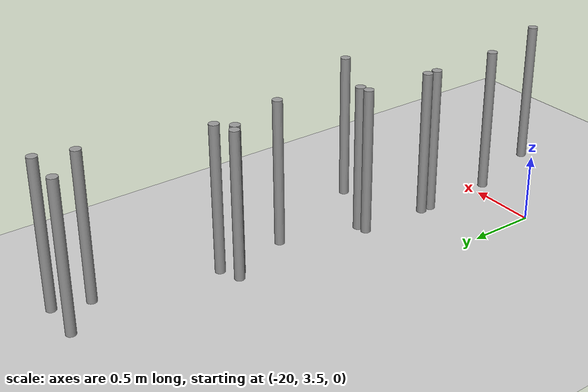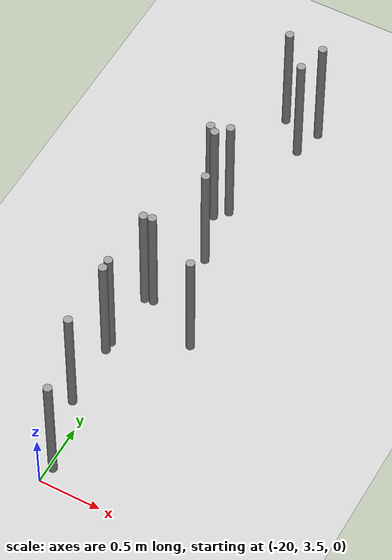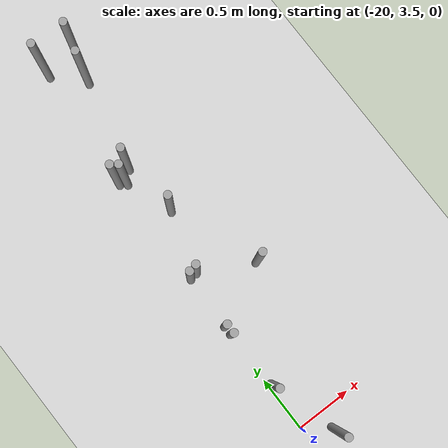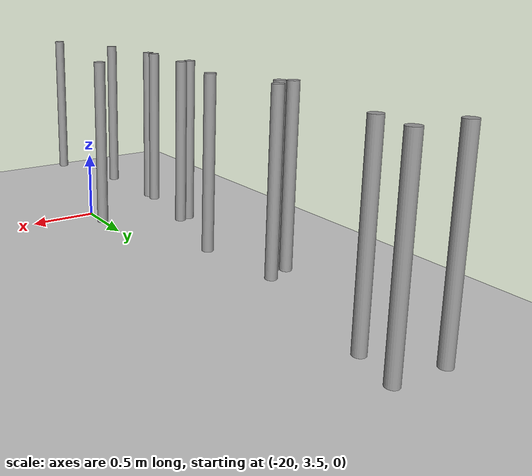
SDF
<sdf version="1.6">
 <world name="default">
  <model name="ground_plane">
   <static>1</static>
   <link name="link">
    <collision name="collision">
     <geometry><plane><normal>0 0 1</normal><size>100 100</size></plane></geometry>
     <surface><friction><ode><mu>100</mu><mu2>50</mu2></ode></friction></surface>
    </collision>
    <visual name="visual">
     <cast_shadows>0</cast_shadows>
     <geometry><plane><normal>0 0 1</normal><size>100 100</size></plane></geometry>
     <material>
      <script><uri>file://media/materials/scripts/gazebo.material</uri><name>Gazebo/Grey</name></script>
     </material>
    </visual>
   </link>
  </model>
  <model name="unit_cylinder_clone">
   <pose>-19.5882 7.05424 0.923526 5e-06 2.9e-05 -0.012918</pose>
   <link name="link">
    <inertial>
     <mass>1</mass>
     <inertia><ixx>0.145833</ixx><ixy>0</ixy><ixz>0</ixz><iyy>0.145833</iyy><iyz>0</iyz><izz>0.125</izz></inertia>
    </inertial>
    <collision name="collision">
     <geometry><cylinder><radius>0.0331322</radius><length>1</length></cylinder></geometry>
    </collision>
    <visual name="visual">
     <geometry><cylinder><radius>0.0331322</radius><length>1</length></cylinder></geometry>
     <material>
      <script><name>Gazebo/Grey</name><uri>file://media/materials/scripts/gazebo.material</uri></script>
     </material>
    </visual>
   </link>
  </model>
  <model name="unit_cylinder_clone_0">
   <pose>-19.6501 6.8248 0.923528 1e-06 -1e-06 0.021911</pose>
   <link name="link">
    <inertial>
     <mass>1</mass>
     <inertia><ixx>0.145833</ixx><ixy>0</ixy><ixz>0</ixz><iyy>0.145833</iyy><iyz>0</iyz><izz>0.125</izz></inertia>
    </inertial>
    <collision name="collision">
     <geometry><cylinder><radius>0.0331322</radius><length>1</length></cylinder></geometry>
    </collision>
    <visual name="visual">
     <geometry><cylinder><radius>0.0331322</radius><length>1</length></cylinder></geometry>
     <material>
      <script><name>Gazebo/Grey</name><uri>file://media/materials/scripts/gazebo.material</uri></script>
     </material>
    </visual>
   </link>
  </model>
  <model name="unit_cylinder_clone_2">
   <pose>-19.8744 7.0672 0.923528 -1e-06 3e-06 0.003301</pose>
   <link name="link">
    <inertial>
     <mass>1</mass>
     <inertia><ixx>0.145833</ixx><ixy>0</ixy><ixz>0</ixz><iyy>0.145833</iyy><iyz>0</iyz><izz>0.125</izz></inertia>
    </inertial>
    <collision name="collision">
     <geometry><cylinder><radius>0.0331322</radius><length>1</length></cylinder></geometry>
    </collision>
    <visual name="visual">
     <geometry><cylinder><radius>0.0331322</radius><length>1</length></cylinder></geometry>
     <material>
      <script><name>Gazebo/Grey</name><uri>file://media/materials/scripts/gazebo.material</uri></script>
     </material>
    </visual>
   </link>
  </model>
  <model name="unit_cylinder_clone_6">
   <pose>-19.8257 6.04554 0.923528 1e-06 2e-06 0.012434</pose>
   <link name="link">
    <inertial>
     <mass>1</mass>
     <inertia><ixx>0.145833</ixx><ixy>0</ixy><ixz>0</ixz><iyy>0.145833</iyy><iyz>0</iyz><izz>0.125</izz></inertia>
    </inertial>
    <collision name="collision">
     <geometry><cylinder><radius>0.0331322</radius><length>1</length></cylinder></geometry>
    </collision>
    <visual name="visual">
     <geometry><cylinder><radius>0.0331322</radius><length>1</length></cylinder></geometry>
     <material>
      <script><name>Gazebo/Grey</name><uri>file://media/materials/scripts/gazebo.material</uri></script>
     </material>
    </visual>
   </link>
  </model>
  <model name="unit_cylinder_clone_8">
   <pose>-19.9107 5.95607 0.92352 0 1e-06 0.00472</pose>
   <link name="link">
    <inertial>
     <mass>1</mass>
     <inertia><ixx>0.145833</ixx><ixy>0</ixy><ixz>0</ixz><iyy>0.145833</iyy><iyz>0</iyz><izz>0.125</izz></inertia>
    </inertial>
    <collision name="collision">
     <geometry><cylinder><radius>0.0331322</radius><length>1</length></cylinder></geometry>
    </collision>
    <visual name="visual">
     <geometry><cylinder><radius>0.0331322</radius><length>1</length></cylinder></geometry>
     <material>
      <script><name>Gazebo/Grey</name><uri>file://media/materials/scripts/gazebo.material</uri></script>
     </material>
    </visual>
   </link>
  </model>
  <model name="unit_cylinder_clone_11">
   <pose>-19.7666 5.55858 0.923525 2.3e-05 -1e-06 -0.004253</pose>
   <link name="link">
    <inertial>
     <mass>1</mass>
     <inertia><ixx>0.145833</ixx><ixy>0</ixy><ixz>0</ixz><iyy>0.145833</iyy><iyz>0</iyz><izz>0.125</izz></inertia>
    </inertial>
    <collision name="collision">
     <geometry><cylinder><radius>0.0331322</radius><length>1</length></cylinder></geometry>
    </collision>
    <visual name="visual">
     <geometry><cylinder><radius>0.0331322</radius><length>1</length></cylinder></geometry>
     <material>
      <script><name>Gazebo/Grey</name><uri>file://media/materials/scripts/gazebo.material</uri></script>
     </material>
    </visual>
   </link>
  </model>
  <model name="unit_cylinder_clone_17">
   <pose>-19.9144 5.03566 0.923522 0 3.1e-05 -0.009797</pose>
   <link name="link">
    <inertial>
     <mass>1</mass>
     <inertia><ixx>0.145833</ixx><ixy>0</ixy><ixz>0</ixz><iyy>0.145833</iyy><iyz>0</iyz><izz>0.125</izz></inertia>
    </inertial>
    <collision name="collision">
     <geometry><cylinder><radius>0.0331322</radius><length>1</length></cylinder></geometry>
    </collision>
    <visual name="visual">
     <geometry><cylinder><radius>0.0331322</radius><length>1</length></cylinder></geometry>
     <material>
      <script><name>Gazebo/Grey</name><uri>file://media/materials/scripts/gazebo.material</uri></script>
     </material>
    </visual>
   </link>
  </model>
  <model name="unit_cylinder_clone_18">
   <pose>-19.9643 5.99501 0.923521 -5e-06 5e-06 0.002201</pose>
   <link name="link">
    <inertial>
     <mass>1</mass>
     <inertia><ixx>0.145833</ixx><ixy>0</ixy><ixz>0</ixz><iyy>0.145833</iyy><iyz>0</iyz><izz>0.125</izz></inertia>
    </inertial>
    <collision name="collision">
     <geometry><cylinder><radius>0.0331322</radius><length>1</length></cylinder></geometry>
    </collision>
    <visual name="visual">
     <geometry><cylinder><radius>0.0331322</radius><length>1</length></cylinder></geometry>
     <material>
      <script><name>Gazebo/Grey</name><uri>file://media/materials/scripts/gazebo.material</uri></script>
     </material>
    </visual>
   </link>
  </model>
  <model name="unit_cylinder_clone_20">
   <pose>-19.9802 5.02379 0.923522 1.2e-05 -3e-06 -0.015644</pose>
   <link name="link">
    <inertial>
     <mass>1</mass>
     <inertia><ixx>0.145833</ixx><ixy>0</ixy><ixz>0</ixz><iyy>0.145833</iyy><iyz>0</iyz><izz>0.125</izz></inertia>
    </inertial>
    <collision name="collision">
     <geometry><cylinder><radius>0.0331322</radius><length>1</length></cylinder></geometry>
    </collision>
    <visual name="visual">
     <geometry><cylinder><radius>0.0331322</radius><length>1</length></cylinder></geometry>
     <material>
      <script><name>Gazebo/Grey</name><uri>file://media/materials/scripts/gazebo.material</uri></script>
     </material>
    </visual>
   </link>
  </model>
  <model name="unit_cylinder_clone_22">
   <pose>-19.4788 4.81128 0.923525 -3e-06 3e-06 -0.003778</pose>
   <link name="link">
    <inertial>
     <mass>1</mass>
     <inertia><ixx>0.145833</ixx><ixy>0</ixy><ixz>0</ixz><iyy>0.145833</iyy><iyz>0</iyz><izz>0.125</izz></inertia>
    </inertial>
    <collision name="collision">
     <geometry><cylinder><radius>0.0331322</radius><length>1</length></cylinder></geometry>
    </collision>
    <visual name="visual">
     <geometry><cylinder><radius>0.0331322</radius><length>1</length></cylinder></geometry>
     <material>
      <script><name>Gazebo/Grey</name><uri>file://media/materials/scripts/gazebo.material</uri></script>
     </material>
    </visual>
   </link>
  </model>
  <model name="unit_cylinder_clone_23">
   <pose>-20 4.55744 0.923522 -1e-05 -7e-06 0.009945</pose>
   <link name="link">
    <inertial>
     <mass>1</mass>
     <inertia><ixx>0.145833</ixx><ixy>0</ixy><ixz>0</ixz><iyy>0.145833</iyy><iyz>0</iyz><izz>0.125</izz></inertia>
    </inertial>
    <collision name="collision">
     <geometry><cylinder><radius>0.0331322</radius><length>1</length></cylinder></geometry>
    </collision>
    <visual name="visual">
     <geometry><cylinder><radius>0.0331322</radius><length>1</length></cylinder></geometry>
     <material>
      <script><name>Gazebo/Grey</name><uri>file://media/materials/scripts/gazebo.material</uri></script>
     </material>
    </visual>
   </link>
  </model>
  <model name="unit_cylinder_clone_29">
   <pose>-19.9835 3.97116 0.923527 5e-06 -8e-06 0.000986</pose>
   <link name="link">
    <inertial>
     <mass>1</mass>
     <inertia><ixx>0.145833</ixx><ixy>0</ixy><ixz>0</ixz><iyy>0.145833</iyy><iyz>0</iyz><izz>0.125</izz></inertia>
    </inertial>
    <collision name="collision">
     <geometry><cylinder><radius>0.0331322</radius><length>1</length></cylinder></geometry>
    </collision>
    <visual name="visual">
     <geometry><cylinder><radius>0.0331322</radius><length>1</length></cylinder></geometry>
     <material>
      <script><name>Gazebo/Grey</name><uri>file://media/materials/scripts/gazebo.material</uri></script>
     </material>
    </visual>
   </link>
  </model>
  <model name="unit_cylinder_clone_30">
   <pose>-20 4.48007 0.923529 3e-06 -2e-06 0.007784</pose>
   <link name="link">
    <inertial>
     <mass>1</mass>
     <inertia><ixx>0.145833</ixx><ixy>0</ixy><ixz>0</ixz><iyy>0.145833</iyy><iyz>0</iyz><izz>0.125</izz></inertia>
    </inertial>
    <collision name="collision">
     <geometry><cylinder><radius>0.0331322</radius><length>1</length></cylinder></geometry>
    </collision>
    <visual name="visual">
     <geometry><cylinder><radius>0.0331322</radius><length>1</length></cylinder></geometry>
     <material>
      <script><name>Gazebo/Grey</name><uri>file://media/materials/scripts/gazebo.material</uri></script>
     </material>
    </visual>
   </link>
  </model>
  <model name="unit_cylinder_clone_42">
   <pose>-19.8123 3.40486 0.923526 1.7e-05 5e-06 -0.017732</pose>
   <link name="link">
    <inertial>
     <mass>1</mass>
     <inertia><ixx>0.145833</ixx><ixy>0</ixy><ixz>0</ixz><iyy>0.145833</iyy><iyz>0</iyz><izz>0.125</izz></inertia>
    </inertial>
    <collision name="collision">
     <geometry><cylinder><radius>0.0331322</radius><length>1</length></cylinder></geometry>
    </collision>
    <visual name="visual">
     <geometry><cylinder><radius>0.0331322</radius><length>1</length></cylinder></geometry>
     <material>
      <script><name>Gazebo/Grey</name><uri>file://media/materials/scripts/gazebo.material</uri></script>
     </material>
    </visual>
   </link>
  </model>
 </world>
</sdf>
